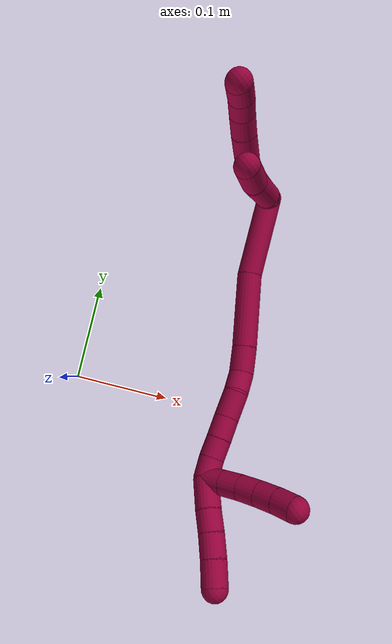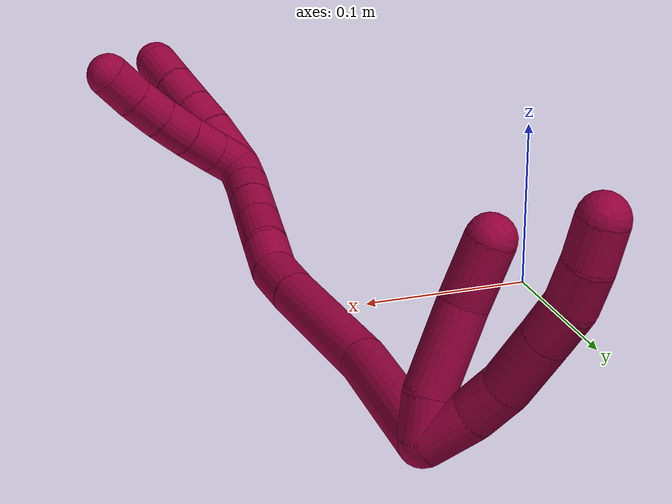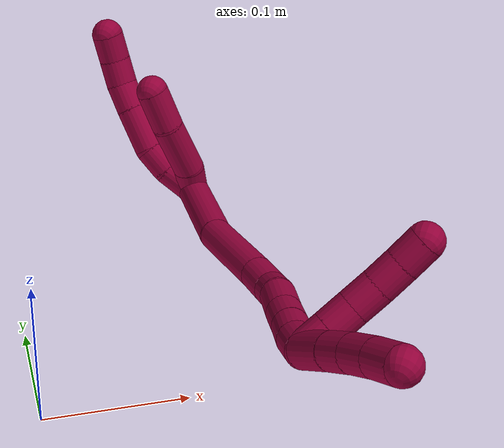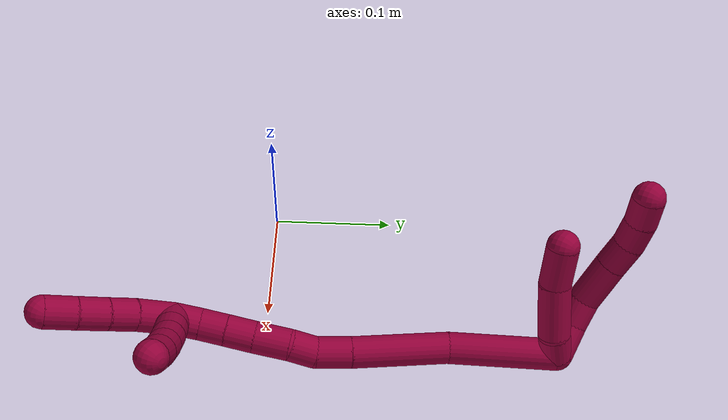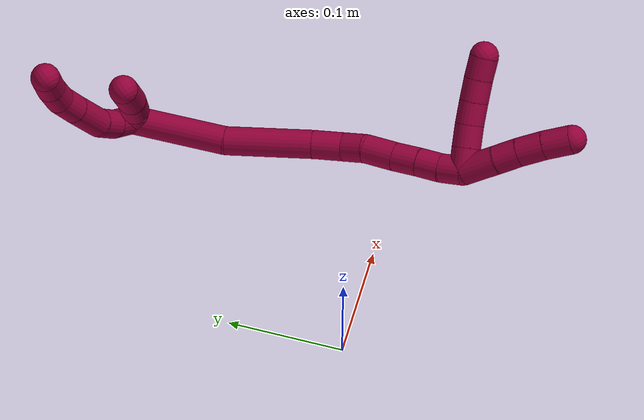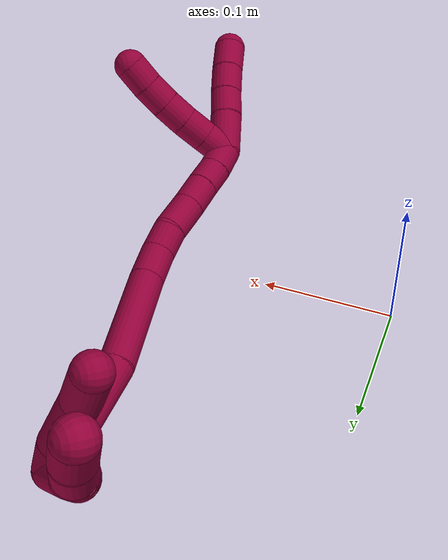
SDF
<sdf version="1.7">
 <world name="default">
  <model name="8">
   <static>0</static>
   <link name="8">
    <collision name="collision-cylinder-e_1_2_8">
     <pose>-0.012155 0.00575 0.000658 -1.4569 -1.12643 1.02603</pose>
     <geometry><cylinder><radius>0.0125</radius><length>0.026924</length></cylinder></geometry>
     <surface>
      <friction><ode><mu>1.16</mu><mu2>1.16</mu2><slip1>0</slip1><slip2>0</slip2></ode></friction>
      <contact><ode><kp>1e+06</kp><kd>1</kd><max_vel>0</max_vel><min_depth>0.001</min_depth></ode></contact>
     </surface>
    </collision>
    <visual name="visual-cylinder-e_1_2_8">
     <pose>-0.012155 0.00575 0.000658 -1.4569 -1.12643 1.02603</pose>
     <geometry><cylinder><radius>0.0125</radius><length>0.026924</length></cylinder></geometry>
     <material><ambient>0.584314 0 0.227451 1</ambient></material>
    </visual>
    <collision name="collision-cylinder-e_2_8_9">
     <pose>-0.034748 0.014516 0.003335 -0.980897 -1.23606 0.725624</pose>
     <geometry><cylinder><radius>0.0125</radius><length>0.022104</length></cylinder></geometry>
     <surface>
      <friction><ode><mu>1.16</mu><mu2>1.16</mu2><slip1>0</slip1><slip2>0</slip2></ode></friction>
      <contact><ode><kp>1e+06</kp><kd>1</kd><max_vel>0</max_vel><min_depth>0.001</min_depth></ode></contact>
     </surface>
    </collision>
    <visual name="visual-cylinder-e_2_8_9">
     <pose>-0.034748 0.014516 0.003335 -0.980897 -1.23606 0.725624</pose>
     <geometry><cylinder><radius>0.0125</radius><length>0.022104</length></cylinder></geometry>
     <material><ambient>0.584314 0 0.227451 1</ambient></material>
    </visual>
    <collision name="collision-cylinder-e_3_9_10">
     <pose>-0.061405 0.019478 0.012595 -0.262375 -1.13783 0.168343</pose>
     <geometry><cylinder><radius>0.0125</radius><length>0.035734</length></cylinder></geometry>
     <surface>
      <friction><ode><mu>1.16</mu><mu2>1.16</mu2><slip1>0</slip1><slip2>0</slip2></ode></friction>
      <contact><ode><kp>1e+06</kp><kd>1</kd><max_vel>0</max_vel><min_depth>0.001</min_depth></ode></contact>
     </surface>
    </collision>
    <visual name="visual-cylinder-e_3_9_10">
     <pose>-0.061405 0.019478 0.012595 -0.262375 -1.13783 0.168343</pose>
     <geometry><cylinder><radius>0.0125</radius><length>0.035734</length></cylinder></geometry>
     <material><ambient>0.584314 0 0.227451 1</ambient></material>
    </visual>
    <collision name="collision-cylinder-e_4_10_11">
     <pose>-0.087545 0.022473 0.024672 -0.213846 -1.108 0.132602</pose>
     <geometry><cylinder><radius>0.0125</radius><length>0.022178</length></cylinder></geometry>
     <surface>
      <friction><ode><mu>1.16</mu><mu2>1.16</mu2><slip1>0</slip1><slip2>0</slip2></ode></friction>
      <contact><ode><kp>1e+06</kp><kd>1</kd><max_vel>0</max_vel><min_depth>0.001</min_depth></ode></contact>
     </surface>
    </collision>
    <visual name="visual-cylinder-e_4_10_11">
     <pose>-0.087545 0.022473 0.024672 -0.213846 -1.108 0.132602</pose>
     <geometry><cylinder><radius>0.0125</radius><length>0.022178</length></cylinder></geometry>
     <material><ambient>0.584314 0 0.227451 1</ambient></material>
    </visual>
    <collision name="collision-cylinder-e_5_11_12">
     <pose>-0.107481 0.022033 0.033205 0.383386 -1.19216 -0.261817</pose>
     <geometry><cylinder><radius>0.0125</radius><length>0.021555</length></cylinder></geometry>
     <surface>
      <friction><ode><mu>1.16</mu><mu2>1.16</mu2><slip1>0</slip1><slip2>0</slip2></ode></friction>
      <contact><ode><kp>1e+06</kp><kd>1</kd><max_vel>0</max_vel><min_depth>0.001</min_depth></ode></contact>
     </surface>
    </collision>
    <visual name="visual-cylinder-e_5_11_12">
     <pose>-0.107481 0.022033 0.033205 0.383386 -1.19216 -0.261817</pose>
     <geometry><cylinder><radius>0.0125</radius><length>0.021555</length></cylinder></geometry>
     <material><ambient>0.584314 0 0.227451 1</ambient></material>
    </visual>
    <collision name="collision-cylinder-e_6_12_6">
     <pose>-0.12766 0.017998 0.039314 0.811735 -1.23843 -0.594412</pose>
     <geometry><cylinder><radius>0.0125</radius><length>0.021506</length></cylinder></geometry>
     <surface>
      <friction><ode><mu>1.16</mu><mu2>1.16</mu2><slip1>0</slip1><slip2>0</slip2></ode></friction>
      <contact><ode><kp>1e+06</kp><kd>1</kd><max_vel>0</max_vel><min_depth>0.001</min_depth></ode></contact>
     </surface>
    </collision>
    <visual name="visual-cylinder-e_6_12_6">
     <pose>-0.12766 0.017998 0.039314 0.811735 -1.23843 -0.594412</pose>
     <geometry><cylinder><radius>0.0125</radius><length>0.021506</length></cylinder></geometry>
     <material><ambient>0.584314 0 0.227451 1</ambient></material>
    </visual>
    <collision name="collision-cylinder-e_1_2_13">
     <pose>-0.010103 -0.00507 0.000143 1.54263 -1.10553 -1.08052</pose>
     <geometry><cylinder><radius>0.0125</radius><length>0.022609</length></cylinder></geometry>
     <surface>
      <friction><ode><mu>1.16</mu><mu2>1.16</mu2><slip1>0</slip1><slip2>0</slip2></ode></friction>
      <contact><ode><kp>1e+06</kp><kd>1</kd><max_vel>0</max_vel><min_depth>0.001</min_depth></ode></contact>
     </surface>
    </collision>
    <visual name="visual-cylinder-e_1_2_13">
     <pose>-0.010103 -0.00507 0.000143 1.54263 -1.10553 -1.08052</pose>
     <geometry><cylinder><radius>0.0125</radius><length>0.022609</length></cylinder></geometry>
     <material><ambient>0.584314 0 0.227451 1</ambient></material>
    </visual>
    <collision name="collision-cylinder-e_2_13_14">
     <pose>-0.042075 -0.015147 -0.000559 1.7379 -1.34266 -1.50858</pose>
     <geometry><cylinder><radius>0.0125</radius><length>0.044901</length></cylinder></geometry>
     <surface>
      <friction><ode><mu>1.16</mu><mu2>1.16</mu2><slip1>0</slip1><slip2>0</slip2></ode></friction>
      <contact><ode><kp>1e+06</kp><kd>1</kd><max_vel>0</max_vel><min_depth>0.001</min_depth></ode></contact>
     </surface>
    </collision>
    <visual name="visual-cylinder-e_2_13_14">
     <pose>-0.042075 -0.015147 -0.000559 1.7379 -1.34266 -1.50858</pose>
     <geometry><cylinder><radius>0.0125</radius><length>0.044901</length></cylinder></geometry>
     <material><ambient>0.584314 0 0.227451 1</ambient></material>
    </visual>
    <collision name="collision-cylinder-e_3_14_5">
     <pose>-0.079865 -0.0227 0.000578 0.909425 -1.37084 -0.760568</pose>
     <geometry><cylinder><radius>0.0125</radius><length>0.03249</length></cylinder></geometry>
     <surface>
      <friction><ode><mu>1.16</mu><mu2>1.16</mu2><slip1>0</slip1><slip2>0</slip2></ode></friction>
      <contact><ode><kp>1e+06</kp><kd>1</kd><max_vel>0</max_vel><min_depth>0.001</min_depth></ode></contact>
     </surface>
    </collision>
    <visual name="visual-cylinder-e_3_14_5">
     <pose>-0.079865 -0.0227 0.000578 0.909425 -1.37084 -0.760568</pose>
     <geometry><cylinder><radius>0.0125</radius><length>0.03249</length></cylinder></geometry>
     <material><ambient>0.584314 0 0.227451 1</ambient></material>
    </visual>
    <collision name="collision-cylinder-e_1_2_15">
     <pose>0.002191 -0.027356 -0.032283 2.43861 0.051721 0.140835</pose>
     <geometry><cylinder><radius>0.0125</radius><length>0.084743</length></cylinder></geometry>
     <surface>
      <friction><ode><mu>1.16</mu><mu2>1.16</mu2><slip1>0</slip1><slip2>0</slip2></ode></friction>
      <contact><ode><kp>1e+06</kp><kd>1</kd><max_vel>0</max_vel><min_depth>0.001</min_depth></ode></contact>
     </surface>
    </collision>
    <visual name="visual-cylinder-e_1_2_15">
     <pose>0.002191 -0.027356 -0.032283 2.43861 0.051721 0.140835</pose>
     <geometry><cylinder><radius>0.0125</radius><length>0.084743</length></cylinder></geometry>
     <material><ambient>0.584314 0 0.227451 1</ambient></material>
    </visual>
    <collision name="collision-cylinder-e_2_15_16">
     <pose>0.007802 -0.084105 -0.088773 2.25977 0.089599 0.189428</pose>
     <geometry><cylinder><radius>0.0125</radius><length>0.076463</length></cylinder></geometry>
     <surface>
      <friction><ode><mu>1.16</mu><mu2>1.16</mu2><slip1>0</slip1><slip2>0</slip2></ode></friction>
      <contact><ode><kp>1e+06</kp><kd>1</kd><max_vel>0</max_vel><min_depth>0.001</min_depth></ode></contact>
     </surface>
    </collision>
    <visual name="visual-cylinder-e_2_15_16">
     <pose>0.007802 -0.084105 -0.088773 2.25977 0.089599 0.189428</pose>
     <geometry><cylinder><radius>0.0125</radius><length>0.076463</length></cylinder></geometry>
     <material><ambient>0.584314 0 0.227451 1</ambient></material>
    </visual>
    <collision name="collision-cylinder-e_3_16_17">
     <pose>0.01197 -0.123696 -0.122083 2.29944 0.054592 0.121774</pose>
     <geometry><cylinder><radius>0.0125</radius><length>0.02738</length></cylinder></geometry>
     <surface>
      <friction><ode><mu>1.16</mu><mu2>1.16</mu2><slip1>0</slip1><slip2>0</slip2></ode></friction>
      <contact><ode><kp>1e+06</kp><kd>1</kd><max_vel>0</max_vel><min_depth>0.001</min_depth></ode></contact>
     </surface>
    </collision>
    <visual name="visual-cylinder-e_3_16_17">
     <pose>0.01197 -0.123696 -0.122083 2.29944 0.054592 0.121774</pose>
     <geometry><cylinder><radius>0.0125</radius><length>0.02738</length></cylinder></geometry>
     <material><ambient>0.584314 0 0.227451 1</ambient></material>
    </visual>
    <collision name="collision-cylinder-e_4_17_18">
     <pose>0.010207 -0.141309 -0.138032 2.31645 -0.243734 -0.545681</pose>
     <geometry><cylinder><radius>0.0125</radius><length>0.0208</length></cylinder></geometry>
     <surface>
      <friction><ode><mu>1.16</mu><mu2>1.16</mu2><slip1>0</slip1><slip2>0</slip2></ode></friction>
      <contact><ode><kp>1e+06</kp><kd>1</kd><max_vel>0</max_vel><min_depth>0.001</min_depth></ode></contact>
     </surface>
    </collision>
    <visual name="visual-cylinder-e_4_17_18">
     <pose>0.010207 -0.141309 -0.138032 2.31645 -0.243734 -0.545681</pose>
     <geometry><cylinder><radius>0.0125</radius><length>0.0208</length></cylinder></geometry>
     <material><ambient>0.584314 0 0.227451 1</ambient></material>
    </visual>
    <collision name="collision-cylinder-e_5_18_19">
     <pose>0.006385 -0.157083 -0.155799 2.48817 -0.095103 -0.279045</pose>
     <geometry><cylinder><radius>0.0125</radius><length>0.027631</length></cylinder></geometry>
     <surface>
      <friction><ode><mu>1.16</mu><mu2>1.16</mu2><slip1>0</slip1><slip2>0</slip2></ode></friction>
      <contact><ode><kp>1e+06</kp><kd>1</kd><max_vel>0</max_vel><min_depth>0.001</min_depth></ode></contact>
     </surface>
    </collision>
    <visual name="visual-cylinder-e_5_18_19">
     <pose>0.006385 -0.157083 -0.155799 2.48817 -0.095103 -0.279045</pose>
     <geometry><cylinder><radius>0.0125</radius><length>0.027631</length></cylinder></geometry>
     <material><ambient>0.584314 0 0.227451 1</ambient></material>
    </visual>
    <collision name="collision-cylinder-e_6_19_20">
     <pose>0.003565 -0.172516 -0.175214 2.44734 -0.135636 -0.371175</pose>
     <geometry><cylinder><radius>0.0125</radius><length>0.022311</length></cylinder></geometry>
     <surface>
      <friction><ode><mu>1.16</mu><mu2>1.16</mu2><slip1>0</slip1><slip2>0</slip2></ode></friction>
      <contact><ode><kp>1e+06</kp><kd>1</kd><max_vel>0</max_vel><min_depth>0.001</min_depth></ode></contact>
     </surface>
    </collision>
    <visual name="visual-cylinder-e_6_19_20">
     <pose>0.003565 -0.172516 -0.175214 2.44734 -0.135636 -0.371175</pose>
     <geometry><cylinder><radius>0.0125</radius><length>0.022311</length></cylinder></geometry>
     <material><ambient>0.584314 0 0.227451 1</ambient></material>
    </visual>
    <collision name="collision-cylinder-e_7_20_21">
     <pose>0.000885 -0.185797 -0.191689 2.48038 -0.115347 -0.33334</pose>
     <geometry><cylinder><radius>0.0125</radius><length>0.020358</length></cylinder></geometry>
     <surface>
      <friction><ode><mu>1.16</mu><mu2>1.16</mu2><slip1>0</slip1><slip2>0</slip2></ode></friction>
      <contact><ode><kp>1e+06</kp><kd>1</kd><max_vel>0</max_vel><min_depth>0.001</min_depth></ode></contact>
     </surface>
    </collision>
    <visual name="visual-cylinder-e_7_20_21">
     <pose>0.000885 -0.185797 -0.191689 2.48038 -0.115347 -0.33334</pose>
     <geometry><cylinder><radius>0.0125</radius><length>0.020358</length></cylinder></geometry>
     <material><ambient>0.584314 0 0.227451 1</ambient></material>
    </visual>
    <collision name="collision-cylinder-e_8_21_1">
     <pose>-0.001757 -0.19913 -0.206759 2.35381 -0.145324 -0.346763</pose>
     <geometry><cylinder><radius>0.0125</radius><length>0.020316</length></cylinder></geometry>
     <surface>
      <friction><ode><mu>1.16</mu><mu2>1.16</mu2><slip1>0</slip1><slip2>0</slip2></ode></friction>
      <contact><ode><kp>1e+06</kp><kd>1</kd><max_vel>0</max_vel><min_depth>0.001</min_depth></ode></contact>
     </surface>
    </collision>
    <visual name="visual-cylinder-e_8_21_1">
     <pose>-0.001757 -0.19913 -0.206759 2.35381 -0.145324 -0.346763</pose>
     <geometry><cylinder><radius>0.0125</radius><length>0.020316</length></cylinder></geometry>
     <material><ambient>0.584314 0 0.227451 1</ambient></material>
    </visual>
    <collision name="collision-cylinder-e_1_1_22">
     <pose>-0.006403 -0.220671 -0.219319 1.93346 -0.203004 -0.293055</pose>
     <geometry><cylinder><radius>0.0125</radius><length>0.031487</length></cylinder></geometry>
     <surface>
      <friction><ode><mu>1.16</mu><mu2>1.16</mu2><slip1>0</slip1><slip2>0</slip2></ode></friction>
      <contact><ode><kp>1e+06</kp><kd>1</kd><max_vel>0</max_vel><min_depth>0.001</min_depth></ode></contact>
     </surface>
    </collision>
    <visual name="visual-cylinder-e_1_1_22">
     <pose>-0.006403 -0.220671 -0.219319 1.93346 -0.203004 -0.293055</pose>
     <geometry><cylinder><radius>0.0125</radius><length>0.031487</length></cylinder></geometry>
     <material><ambient>0.584314 0 0.227451 1</ambient></material>
    </visual>
    <collision name="collision-cylinder-e_2_22_23">
     <pose>-0.010968 -0.244983 -0.228328 1.91414 -0.131662 -0.186621</pose>
     <geometry><cylinder><radius>0.0125</radius><length>0.021201</length></cylinder></geometry>
     <surface>
      <friction><ode><mu>1.16</mu><mu2>1.16</mu2><slip1>0</slip1><slip2>0</slip2></ode></friction>
      <contact><ode><kp>1e+06</kp><kd>1</kd><max_vel>0</max_vel><min_depth>0.001</min_depth></ode></contact>
     </surface>
    </collision>
    <visual name="visual-cylinder-e_2_22_23">
     <pose>-0.010968 -0.244983 -0.228328 1.91414 -0.131662 -0.186621</pose>
     <geometry><cylinder><radius>0.0125</radius><length>0.021201</length></cylinder></geometry>
     <material><ambient>0.584314 0 0.227451 1</ambient></material>
    </visual>
    <collision name="collision-cylinder-e_3_23_24">
     <pose>-0.013729 -0.265377 -0.236305 1.97084 -0.119514 -0.180022</pose>
     <geometry><cylinder><radius>0.0125</radius><length>0.022961</length></cylinder></geometry>
     <surface>
      <friction><ode><mu>1.16</mu><mu2>1.16</mu2><slip1>0</slip1><slip2>0</slip2></ode></friction>
      <contact><ode><kp>1e+06</kp><kd>1</kd><max_vel>0</max_vel><min_depth>0.001</min_depth></ode></contact>
     </surface>
    </collision>
    <visual name="visual-cylinder-e_3_23_24">
     <pose>-0.013729 -0.265377 -0.236305 1.97084 -0.119514 -0.180022</pose>
     <geometry><cylinder><radius>0.0125</radius><length>0.022961</length></cylinder></geometry>
     <material><ambient>0.584314 0 0.227451 1</ambient></material>
    </visual>
    <collision name="collision-cylinder-e_4_24_4">
     <pose>-0.016338 -0.286727 -0.246125 2.03111 -0.102065 -0.164303</pose>
     <geometry><cylinder><radius>0.0125</radius><length>0.024351</length></cylinder></geometry>
     <surface>
      <friction><ode><mu>1.16</mu><mu2>1.16</mu2><slip1>0</slip1><slip2>0</slip2></ode></friction>
      <contact><ode><kp>1e+06</kp><kd>1</kd><max_vel>0</max_vel><min_depth>0.001</min_depth></ode></contact>
     </surface>
    </collision>
    <visual name="visual-cylinder-e_4_24_4">
     <pose>-0.016338 -0.286727 -0.246125 2.03111 -0.102065 -0.164303</pose>
     <geometry><cylinder><radius>0.0125</radius><length>0.024351</length></cylinder></geometry>
     <material><ambient>0.584314 0 0.227451 1</ambient></material>
    </visual>
    <collision name="collision-cylinder-e_1_1_25">
     <pose>-0.004025 -0.213286 -0.206784 0.783115 -0.079725 -0.032931</pose>
     <geometry><cylinder><radius>0.0125</radius><length>0.02</length></cylinder></geometry>
     <surface>
      <friction><ode><mu>1.16</mu><mu2>1.16</mu2><slip1>0</slip1><slip2>0</slip2></ode></friction>
      <contact><ode><kp>1e+06</kp><kd>1</kd><max_vel>0</max_vel><min_depth>0.001</min_depth></ode></contact>
     </surface>
    </collision>
    <visual name="visual-cylinder-e_1_1_25">
     <pose>-0.004025 -0.213286 -0.206784 0.783115 -0.079725 -0.032931</pose>
     <geometry><cylinder><radius>0.0125</radius><length>0.02</length></cylinder></geometry>
     <material><ambient>0.584314 0 0.227451 1</ambient></material>
    </visual>
    <collision name="collision-cylinder-e_2_25_26">
     <pose>-0.005777 -0.227442 -0.192767 0.797537 -0.095749 -0.040368</pose>
     <geometry><cylinder><radius>0.0125</radius><length>0.02</length></cylinder></geometry>
     <surface>
      <friction><ode><mu>1.16</mu><mu2>1.16</mu2><slip1>0</slip1><slip2>0</slip2></ode></friction>
      <contact><ode><kp>1e+06</kp><kd>1</kd><max_vel>0</max_vel><min_depth>0.001</min_depth></ode></contact>
     </surface>
    </collision>
    <visual name="visual-cylinder-e_2_25_26">
     <pose>-0.005777 -0.227442 -0.192767 0.797537 -0.095749 -0.040368</pose>
     <geometry><cylinder><radius>0.0125</radius><length>0.02</length></cylinder></geometry>
     <material><ambient>0.584314 0 0.227451 1</ambient></material>
    </visual>
    <collision name="collision-cylinder-e_3_26_27">
     <pose>-0.008015 -0.242036 -0.179291 0.852961 -0.128525 -0.058461</pose>
     <geometry><cylinder><radius>0.0125</radius><length>0.02</length></cylinder></geometry>
     <surface>
      <friction><ode><mu>1.16</mu><mu2>1.16</mu2><slip1>0</slip1><slip2>0</slip2></ode></friction>
      <contact><ode><kp>1e+06</kp><kd>1</kd><max_vel>0</max_vel><min_depth>0.001</min_depth></ode></contact>
     </surface>
    </collision>
    <visual name="visual-cylinder-e_3_26_27">
     <pose>-0.008015 -0.242036 -0.179291 0.852961 -0.128525 -0.058461</pose>
     <geometry><cylinder><radius>0.0125</radius><length>0.02</length></cylinder></geometry>
     <material><ambient>0.584314 0 0.227451 1</ambient></material>
    </visual>
    <collision name="collision-cylinder-e_4_27_28">
     <pose>-0.011175 -0.257101 -0.166539 0.883913 -0.188997 -0.089635</pose>
     <geometry><cylinder><radius>0.0125</radius><length>0.02</length></cylinder></geometry>
     <surface>
      <friction><ode><mu>1.16</mu><mu2>1.16</mu2><slip1>0</slip1><slip2>0</slip2></ode></friction>
      <contact><ode><kp>1e+06</kp><kd>1</kd><max_vel>0</max_vel><min_depth>0.001</min_depth></ode></contact>
     </surface>
    </collision>
    <visual name="visual-cylinder-e_4_27_28">
     <pose>-0.011175 -0.257101 -0.166539 0.883913 -0.188997 -0.089635</pose>
     <geometry><cylinder><radius>0.0125</radius><length>0.02</length></cylinder></geometry>
     <material><ambient>0.584314 0 0.227451 1</ambient></material>
    </visual>
    <collision name="collision-cylinder-e_5_28_3">
     <pose>-0.015536 -0.272525 -0.154606 0.94111 -0.250774 -0.128057</pose>
     <geometry><cylinder><radius>0.0125</radius><length>0.02</length></cylinder></geometry>
     <surface>
      <friction><ode><mu>1.16</mu><mu2>1.16</mu2><slip1>0</slip1><slip2>0</slip2></ode></friction>
      <contact><ode><kp>1e+06</kp><kd>1</kd><max_vel>0</max_vel><min_depth>0.001</min_depth></ode></contact>
     </surface>
    </collision>
    <visual name="visual-cylinder-e_5_28_3">
     <pose>-0.015536 -0.272525 -0.154606 0.94111 -0.250774 -0.128057</pose>
     <geometry><cylinder><radius>0.0125</radius><length>0.02</length></cylinder></geometry>
     <material><ambient>0.584314 0 0.227451 1</ambient></material>
    </visual>
    <collision name="collision-sphere-3">
     <pose>-0.018017 -0.280354 -0.148901 0 -0 0</pose>
     <geometry><sphere><radius>0.0125</radius></sphere></geometry>
     <surface>
      <friction><ode><mu>1.16</mu><mu2>1.16</mu2><slip1>0</slip1><slip2>0</slip2></ode></friction>
      <contact><ode><kp>1e+06</kp><kd>1</kd><max_vel>0</max_vel><min_depth>0.001</min_depth></ode></contact>
     </surface>
    </collision>
    <visual name="visual-sphere-3">
     <pose>-0.018017 -0.280354 -0.148901 0 -0 0</pose>
     <geometry><sphere><radius>0.0125</radius></sphere></geometry>
     <material><ambient>0.584314 0 0.227451 1</ambient></material>
    </visual>
    <collision name="collision-sphere-28">
     <pose>-0.013054 -0.264695 -0.160311 0 -0 0</pose>
     <geometry><sphere><radius>0.0125</radius></sphere></geometry>
     <surface>
      <friction><ode><mu>1.16</mu><mu2>1.16</mu2><slip1>0</slip1><slip2>0</slip2></ode></friction>
      <contact><ode><kp>1e+06</kp><kd>1</kd><max_vel>0</max_vel><min_depth>0.001</min_depth></ode></contact>
     </surface>
    </collision>
    <visual name="visual-sphere-28">
     <pose>-0.013054 -0.264695 -0.160311 0 -0 0</pose>
     <geometry><sphere><radius>0.0125</radius></sphere></geometry>
     <material><ambient>0.584314 0 0.227451 1</ambient></material>
    </visual>
    <collision name="collision-sphere-27">
     <pose>-0.009297 -0.249506 -0.172768 0 -0 0</pose>
     <geometry><sphere><radius>0.0125</radius></sphere></geometry>
     <surface>
      <friction><ode><mu>1.16</mu><mu2>1.16</mu2><slip1>0</slip1><slip2>0</slip2></ode></friction>
      <contact><ode><kp>1e+06</kp><kd>1</kd><max_vel>0</max_vel><min_depth>0.001</min_depth></ode></contact>
     </surface>
    </collision>
    <visual name="visual-sphere-27">
     <pose>-0.009297 -0.249506 -0.172768 0 -0 0</pose>
     <geometry><sphere><radius>0.0125</radius></sphere></geometry>
     <material><ambient>0.584314 0 0.227451 1</ambient></material>
    </visual>
    <collision name="collision-sphere-26">
     <pose>-0.006733 -0.234566 -0.185814 0 -0 0</pose>
     <geometry><sphere><radius>0.0125</radius></sphere></geometry>
     <surface>
      <friction><ode><mu>1.16</mu><mu2>1.16</mu2><slip1>0</slip1><slip2>0</slip2></ode></friction>
      <contact><ode><kp>1e+06</kp><kd>1</kd><max_vel>0</max_vel><min_depth>0.001</min_depth></ode></contact>
     </surface>
    </collision>
    <visual name="visual-sphere-26">
     <pose>-0.006733 -0.234566 -0.185814 0 -0 0</pose>
     <geometry><sphere><radius>0.0125</radius></sphere></geometry>
     <material><ambient>0.584314 0 0.227451 1</ambient></material>
    </visual>
    <collision name="collision-sphere-25">
     <pose>-0.004821 -0.220319 -0.19972 0 -0 0</pose>
     <geometry><sphere><radius>0.0125</radius></sphere></geometry>
     <surface>
      <friction><ode><mu>1.16</mu><mu2>1.16</mu2><slip1>0</slip1><slip2>0</slip2></ode></friction>
      <contact><ode><kp>1e+06</kp><kd>1</kd><max_vel>0</max_vel><min_depth>0.001</min_depth></ode></contact>
     </surface>
    </collision>
    <visual name="visual-sphere-25">
     <pose>-0.004821 -0.220319 -0.19972 0 -0 0</pose>
     <geometry><sphere><radius>0.0125</radius></sphere></geometry>
     <material><ambient>0.584314 0 0.227451 1</ambient></material>
    </visual>
    <collision name="collision-sphere-4">
     <pose>-0.017579 -0.297579 -0.251505 0 -0 0</pose>
     <geometry><sphere><radius>0.0125</radius></sphere></geometry>
     <surface>
      <friction><ode><mu>1.16</mu><mu2>1.16</mu2><slip1>0</slip1><slip2>0</slip2></ode></friction>
      <contact><ode><kp>1e+06</kp><kd>1</kd><max_vel>0</max_vel><min_depth>0.001</min_depth></ode></contact>
     </surface>
    </collision>
    <visual name="visual-sphere-4">
     <pose>-0.017579 -0.297579 -0.251505 0 -0 0</pose>
     <geometry><sphere><radius>0.0125</radius></sphere></geometry>
     <material><ambient>0.584314 0 0.227451 1</ambient></material>
    </visual>
    <collision name="collision-sphere-24">
     <pose>-0.015098 -0.275876 -0.240744 0 -0 0</pose>
     <geometry><sphere><radius>0.0125</radius></sphere></geometry>
     <surface>
      <friction><ode><mu>1.16</mu><mu2>1.16</mu2><slip1>0</slip1><slip2>0</slip2></ode></friction>
      <contact><ode><kp>1e+06</kp><kd>1</kd><max_vel>0</max_vel><min_depth>0.001</min_depth></ode></contact>
     </surface>
    </collision>
    <visual name="visual-sphere-24">
     <pose>-0.015098 -0.275876 -0.240744 0 -0 0</pose>
     <geometry><sphere><radius>0.0125</radius></sphere></geometry>
     <material><ambient>0.584314 0 0.227451 1</ambient></material>
    </visual>
    <collision name="collision-sphere-23">
     <pose>-0.01236 -0.254879 -0.231865 0 -0 0</pose>
     <geometry><sphere><radius>0.0125</radius></sphere></geometry>
     <surface>
      <friction><ode><mu>1.16</mu><mu2>1.16</mu2><slip1>0</slip1><slip2>0</slip2></ode></friction>
      <contact><ode><kp>1e+06</kp><kd>1</kd><max_vel>0</max_vel><min_depth>0.001</min_depth></ode></contact>
     </surface>
    </collision>
    <visual name="visual-sphere-23">
     <pose>-0.01236 -0.254879 -0.231865 0 -0 0</pose>
     <geometry><sphere><radius>0.0125</radius></sphere></geometry>
     <material><ambient>0.584314 0 0.227451 1</ambient></material>
    </visual>
    <collision name="collision-sphere-22">
     <pose>-0.009577 -0.235088 -0.22479 0 -0 0</pose>
     <geometry><sphere><radius>0.0125</radius></sphere></geometry>
     <surface>
      <friction><ode><mu>1.16</mu><mu2>1.16</mu2><slip1>0</slip1><slip2>0</slip2></ode></friction>
      <contact><ode><kp>1e+06</kp><kd>1</kd><max_vel>0</max_vel><min_depth>0.001</min_depth></ode></contact>
     </surface>
    </collision>
    <visual name="visual-sphere-22">
     <pose>-0.009577 -0.235088 -0.22479 0 -0 0</pose>
     <geometry><sphere><radius>0.0125</radius></sphere></geometry>
     <material><ambient>0.584314 0 0.227451 1</ambient></material>
    </visual>
    <collision name="collision-sphere-1">
     <pose>-0.003228 -0.206254 -0.213849 0 -0 0</pose>
     <geometry><sphere><radius>0.0125</radius></sphere></geometry>
     <surface>
      <friction><ode><mu>1.16</mu><mu2>1.16</mu2><slip1>0</slip1><slip2>0</slip2></ode></friction>
      <contact><ode><kp>1e+06</kp><kd>1</kd><max_vel>0</max_vel><min_depth>0.001</min_depth></ode></contact>
     </surface>
    </collision>
    <visual name="visual-sphere-1">
     <pose>-0.003228 -0.206254 -0.213849 0 -0 0</pose>
     <geometry><sphere><radius>0.0125</radius></sphere></geometry>
     <material><ambient>0.584314 0 0.227451 1</ambient></material>
    </visual>
    <collision name="collision-sphere-21">
     <pose>-0.000286 -0.192006 -0.199669 0 -0 0</pose>
     <geometry><sphere><radius>0.0125</radius></sphere></geometry>
     <surface>
      <friction><ode><mu>1.16</mu><mu2>1.16</mu2><slip1>0</slip1><slip2>0</slip2></ode></friction>
      <contact><ode><kp>1e+06</kp><kd>1</kd><max_vel>0</max_vel><min_depth>0.001</min_depth></ode></contact>
     </surface>
    </collision>
    <visual name="visual-sphere-21">
     <pose>-0.000286 -0.192006 -0.199669 0 -0 0</pose>
     <geometry><sphere><radius>0.0125</radius></sphere></geometry>
     <material><ambient>0.584314 0 0.227451 1</ambient></material>
    </visual>
    <collision name="collision-sphere-12">
     <pose>-0.117495 0.020543 0.0369 0 -0 0</pose>
     <geometry><sphere><radius>0.0125</radius></sphere></geometry>
     <surface>
      <friction><ode><mu>1.16</mu><mu2>1.16</mu2><slip1>0</slip1><slip2>0</slip2></ode></friction>
      <contact><ode><kp>1e+06</kp><kd>1</kd><max_vel>0</max_vel><min_depth>0.001</min_depth></ode></contact>
     </surface>
    </collision>
    <visual name="visual-sphere-12">
     <pose>-0.117495 0.020543 0.0369 0 -0 0</pose>
     <geometry><sphere><radius>0.0125</radius></sphere></geometry>
     <material><ambient>0.584314 0 0.227451 1</ambient></material>
    </visual>
    <collision name="collision-sphere-11">
     <pose>-0.097467 0.023524 0.02951 0 -0 0</pose>
     <geometry><sphere><radius>0.0125</radius></sphere></geometry>
     <surface>
      <friction><ode><mu>1.16</mu><mu2>1.16</mu2><slip1>0</slip1><slip2>0</slip2></ode></friction>
      <contact><ode><kp>1e+06</kp><kd>1</kd><max_vel>0</max_vel><min_depth>0.001</min_depth></ode></contact>
     </surface>
    </collision>
    <visual name="visual-sphere-11">
     <pose>-0.097467 0.023524 0.02951 0 -0 0</pose>
     <geometry><sphere><radius>0.0125</radius></sphere></geometry>
     <material><ambient>0.584314 0 0.227451 1</ambient></material>
    </visual>
    <collision name="collision-sphere-10">
     <pose>-0.077623 0.021422 0.019835 0 -0 0</pose>
     <geometry><sphere><radius>0.0125</radius></sphere></geometry>
     <surface>
      <friction><ode><mu>1.16</mu><mu2>1.16</mu2><slip1>0</slip1><slip2>0</slip2></ode></friction>
      <contact><ode><kp>1e+06</kp><kd>1</kd><max_vel>0</max_vel><min_depth>0.001</min_depth></ode></contact>
     </surface>
    </collision>
    <visual name="visual-sphere-10">
     <pose>-0.077623 0.021422 0.019835 0 -0 0</pose>
     <geometry><sphere><radius>0.0125</radius></sphere></geometry>
     <material><ambient>0.584314 0 0.227451 1</ambient></material>
    </visual>
    <collision name="collision-sphere-9">
     <pose>-0.045186 0.017534 0.005355 0 -0 0</pose>
     <geometry><sphere><radius>0.0125</radius></sphere></geometry>
     <surface>
      <friction><ode><mu>1.16</mu><mu2>1.16</mu2><slip1>0</slip1><slip2>0</slip2></ode></friction>
      <contact><ode><kp>1e+06</kp><kd>1</kd><max_vel>0</max_vel><min_depth>0.001</min_depth></ode></contact>
     </surface>
    </collision>
    <visual name="visual-sphere-9">
     <pose>-0.045186 0.017534 0.005355 0 -0 0</pose>
     <geometry><sphere><radius>0.0125</radius></sphere></geometry>
     <material><ambient>0.584314 0 0.227451 1</ambient></material>
    </visual>
    <collision name="collision-sphere-2">
     <geometry><sphere><radius>0.0125</radius></sphere></geometry>
     <surface>
      <friction><ode><mu>1.16</mu><mu2>1.16</mu2><slip1>0</slip1><slip2>0</slip2></ode></friction>
      <contact><ode><kp>1e+06</kp><kd>1</kd><max_vel>0</max_vel><min_depth>0.001</min_depth></ode></contact>
     </surface>
    </collision>
    <visual name="visual-sphere-2">
     <geometry><sphere><radius>0.0125</radius></sphere></geometry>
     <material><ambient>0.584314 0 0.227451 1</ambient></material>
    </visual>
    <collision name="collision-sphere-19">
     <pose>0.005073 -0.165444 -0.166719 0 -0 0</pose>
     <geometry><sphere><radius>0.0125</radius></sphere></geometry>
     <surface>
      <friction><ode><mu>1.16</mu><mu2>1.16</mu2><slip1>0</slip1><slip2>0</slip2></ode></friction>
      <contact><ode><kp>1e+06</kp><kd>1</kd><max_vel>0</max_vel><min_depth>0.001</min_depth></ode></contact>
     </surface>
    </collision>
    <visual name="visual-sphere-19">
     <pose>0.005073 -0.165444 -0.166719 0 -0 0</pose>
     <geometry><sphere><radius>0.0125</radius></sphere></geometry>
     <material><ambient>0.584314 0 0.227451 1</ambient></material>
    </visual>
    <collision name="collision-sphere-8">
     <pose>-0.024309 0.011499 0.001315 0 -0 0</pose>
     <geometry><sphere><radius>0.0125</radius></sphere></geometry>
     <surface>
      <friction><ode><mu>1.16</mu><mu2>1.16</mu2><slip1>0</slip1><slip2>0</slip2></ode></friction>
      <contact><ode><kp>1e+06</kp><kd>1</kd><max_vel>0</max_vel><min_depth>0.001</min_depth></ode></contact>
     </surface>
    </collision>
    <visual name="visual-sphere-8">
     <pose>-0.024309 0.011499 0.001315 0 -0 0</pose>
     <geometry><sphere><radius>0.0125</radius></sphere></geometry>
     <material><ambient>0.584314 0 0.227451 1</ambient></material>
    </visual>
    <collision name="collision-sphere-6">
     <pose>-0.137824 0.015453 0.041729 0 -0 0</pose>
     <geometry><sphere><radius>0.0125</radius></sphere></geometry>
     <surface>
      <friction><ode><mu>1.16</mu><mu2>1.16</mu2><slip1>0</slip1><slip2>0</slip2></ode></friction>
      <contact><ode><kp>1e+06</kp><kd>1</kd><max_vel>0</max_vel><min_depth>0.001</min_depth></ode></contact>
     </surface>
    </collision>
    <visual name="visual-sphere-6">
     <pose>-0.137824 0.015453 0.041729 0 -0 0</pose>
     <geometry><sphere><radius>0.0125</radius></sphere></geometry>
     <material><ambient>0.584314 0 0.227451 1</ambient></material>
    </visual>
    <collision name="collision-sphere-13">
     <pose>-0.020206 -0.01014 0.000286 0 -0 0</pose>
     <geometry><sphere><radius>0.0125</radius></sphere></geometry>
     <surface>
      <friction><ode><mu>1.16</mu><mu2>1.16</mu2><slip1>0</slip1><slip2>0</slip2></ode></friction>
      <contact><ode><kp>1e+06</kp><kd>1</kd><max_vel>0</max_vel><min_depth>0.001</min_depth></ode></contact>
     </surface>
    </collision>
    <visual name="visual-sphere-13">
     <pose>-0.020206 -0.01014 0.000286 0 -0 0</pose>
     <geometry><sphere><radius>0.0125</radius></sphere></geometry>
     <material><ambient>0.584314 0 0.227451 1</ambient></material>
    </visual>
    <collision name="collision-sphere-14">
     <pose>-0.063943 -0.020153 -0.001403 0 -0 0</pose>
     <geometry><sphere><radius>0.0125</radius></sphere></geometry>
     <surface>
      <friction><ode><mu>1.16</mu><mu2>1.16</mu2><slip1>0</slip1><slip2>0</slip2></ode></friction>
      <contact><ode><kp>1e+06</kp><kd>1</kd><max_vel>0</max_vel><min_depth>0.001</min_depth></ode></contact>
     </surface>
    </collision>
    <visual name="visual-sphere-14">
     <pose>-0.063943 -0.020153 -0.001403 0 -0 0</pose>
     <geometry><sphere><radius>0.0125</radius></sphere></geometry>
     <material><ambient>0.584314 0 0.227451 1</ambient></material>
    </visual>
    <collision name="collision-sphere-5">
     <pose>-0.095786 -0.025246 0.00256 0 -0 0</pose>
     <geometry><sphere><radius>0.0125</radius></sphere></geometry>
     <surface>
      <friction><ode><mu>1.16</mu><mu2>1.16</mu2><slip1>0</slip1><slip2>0</slip2></ode></friction>
      <contact><ode><kp>1e+06</kp><kd>1</kd><max_vel>0</max_vel><min_depth>0.001</min_depth></ode></contact>
     </surface>
    </collision>
    <visual name="visual-sphere-5">
     <pose>-0.095786 -0.025246 0.00256 0 -0 0</pose>
     <geometry><sphere><radius>0.0125</radius></sphere></geometry>
     <material><ambient>0.584314 0 0.227451 1</ambient></material>
    </visual>
    <collision name="collision-sphere-15">
     <pose>0.004381 -0.054712 -0.064565 0 -0 0</pose>
     <geometry><sphere><radius>0.0125</radius></sphere></geometry>
     <surface>
      <friction><ode><mu>1.16</mu><mu2>1.16</mu2><slip1>0</slip1><slip2>0</slip2></ode></friction>
      <contact><ode><kp>1e+06</kp><kd>1</kd><max_vel>0</max_vel><min_depth>0.001</min_depth></ode></contact>
     </surface>
    </collision>
    <visual name="visual-sphere-15">
     <pose>0.004381 -0.054712 -0.064565 0 -0 0</pose>
     <geometry><sphere><radius>0.0125</radius></sphere></geometry>
     <material><ambient>0.584314 0 0.227451 1</ambient></material>
    </visual>
    <collision name="collision-sphere-16">
     <pose>0.011223 -0.113497 -0.112981 0 -0 0</pose>
     <geometry><sphere><radius>0.0125</radius></sphere></geometry>
     <surface>
      <friction><ode><mu>1.16</mu><mu2>1.16</mu2><slip1>0</slip1><slip2>0</slip2></ode></friction>
      <contact><ode><kp>1e+06</kp><kd>1</kd><max_vel>0</max_vel><min_depth>0.001</min_depth></ode></contact>
     </surface>
    </collision>
    <visual name="visual-sphere-16">
     <pose>0.011223 -0.113497 -0.112981 0 -0 0</pose>
     <geometry><sphere><radius>0.0125</radius></sphere></geometry>
     <material><ambient>0.584314 0 0.227451 1</ambient></material>
    </visual>
    <collision name="collision-sphere-17">
     <pose>0.012717 -0.133894 -0.131185 0 -0 0</pose>
     <geometry><sphere><radius>0.0125</radius></sphere></geometry>
     <surface>
      <friction><ode><mu>1.16</mu><mu2>1.16</mu2><slip1>0</slip1><slip2>0</slip2></ode></friction>
      <contact><ode><kp>1e+06</kp><kd>1</kd><max_vel>0</max_vel><min_depth>0.001</min_depth></ode></contact>
     </surface>
    </collision>
    <visual name="visual-sphere-17">
     <pose>0.012717 -0.133894 -0.131185 0 -0 0</pose>
     <geometry><sphere><radius>0.0125</radius></sphere></geometry>
     <material><ambient>0.584314 0 0.227451 1</ambient></material>
    </visual>
    <collision name="collision-sphere-18">
     <pose>0.007697 -0.148723 -0.144879 0 -0 0</pose>
     <geometry><sphere><radius>0.0125</radius></sphere></geometry>
     <surface>
      <friction><ode><mu>1.16</mu><mu2>1.16</mu2><slip1>0</slip1><slip2>0</slip2></ode></friction>
      <contact><ode><kp>1e+06</kp><kd>1</kd><max_vel>0</max_vel><min_depth>0.001</min_depth></ode></contact>
     </surface>
    </collision>
    <visual name="visual-sphere-18">
     <pose>0.007697 -0.148723 -0.144879 0 -0 0</pose>
     <geometry><sphere><radius>0.0125</radius></sphere></geometry>
     <material><ambient>0.584314 0 0.227451 1</ambient></material>
    </visual>
    <collision name="collision-sphere-20">
     <pose>0.002057 -0.179588 -0.183708 0 -0 0</pose>
     <geometry><sphere><radius>0.0125</radius></sphere></geometry>
     <surface>
      <friction><ode><mu>1.16</mu><mu2>1.16</mu2><slip1>0</slip1><slip2>0</slip2></ode></friction>
      <contact><ode><kp>1e+06</kp><kd>1</kd><max_vel>0</max_vel><min_depth>0.001</min_depth></ode></contact>
     </surface>
    </collision>
    <visual name="visual-sphere-20">
     <pose>0.002057 -0.179588 -0.183708 0 -0 0</pose>
     <geometry><sphere><radius>0.0125</radius></sphere></geometry>
     <material><ambient>0.584314 0 0.227451 1</ambient></material>
    </visual>
    <inertial>
     <pose>-0.020644 -0.106077 -0.094097 0 -0 0</pose>
     <mass>0.75</mass>
     <inertia>
      <ixx>0.000113</ixx>
      <ixy>0</ixy>
      <ixz>0</ixz>
      <iyy>-6.5e-05</iyy>
      <iyz>0</iyz>
      <izz>0.000104</izz>
     </inertia>
    </inertial>
   </link>
   <pose>0.155196 0.23225 0.036236 -1.00781 1.00832 -0.158908</pose>
  </model>
 </world>
</sdf>
